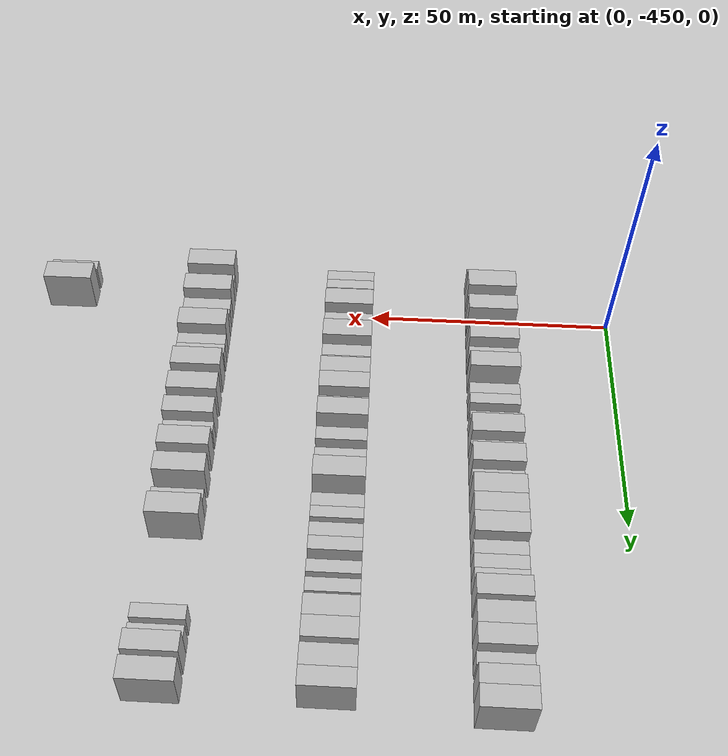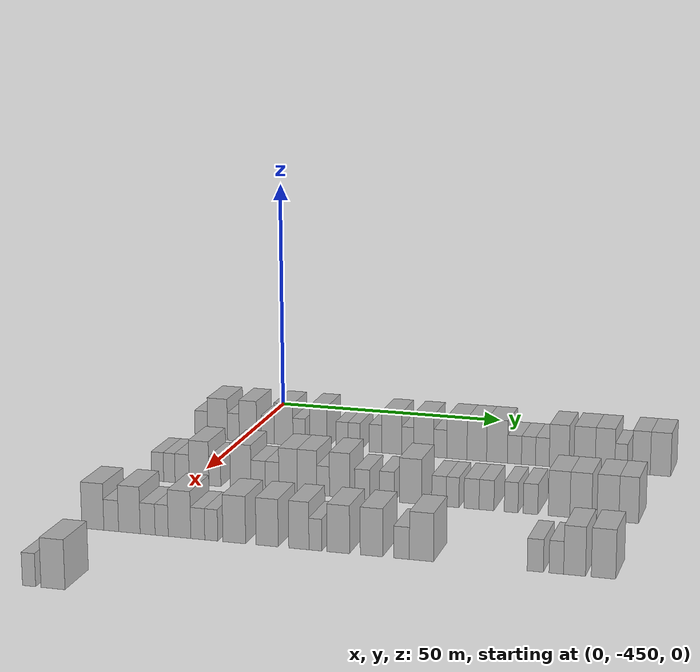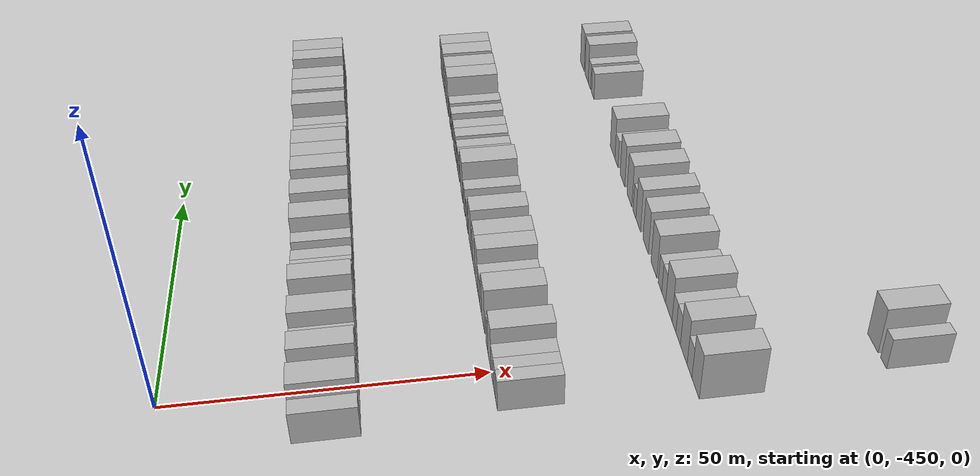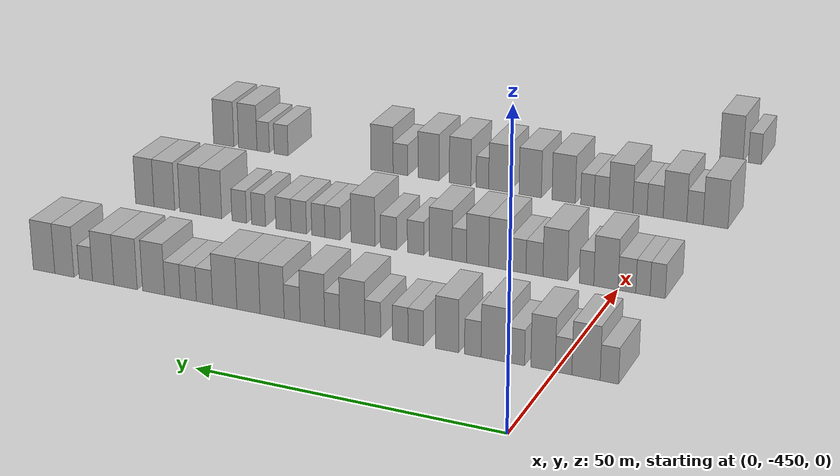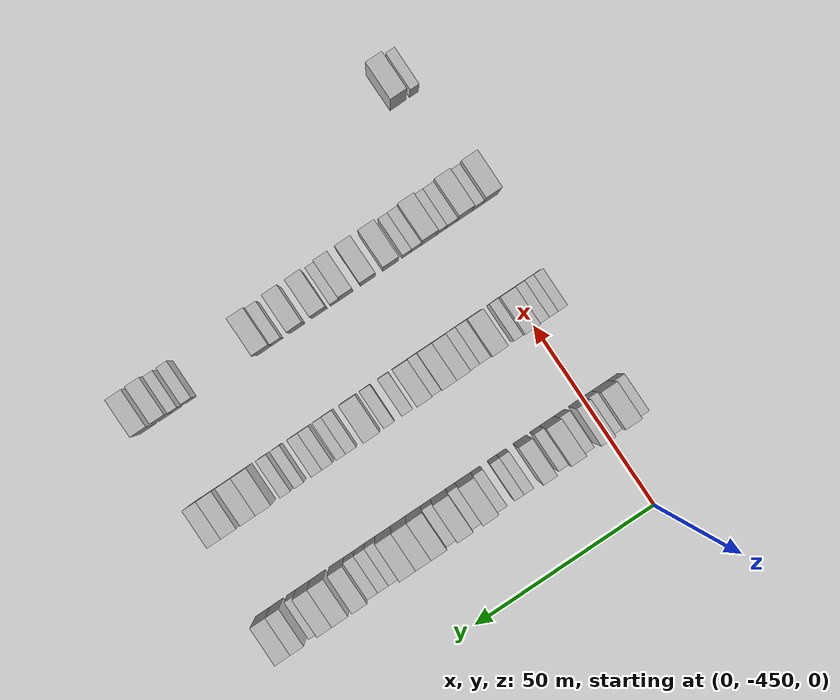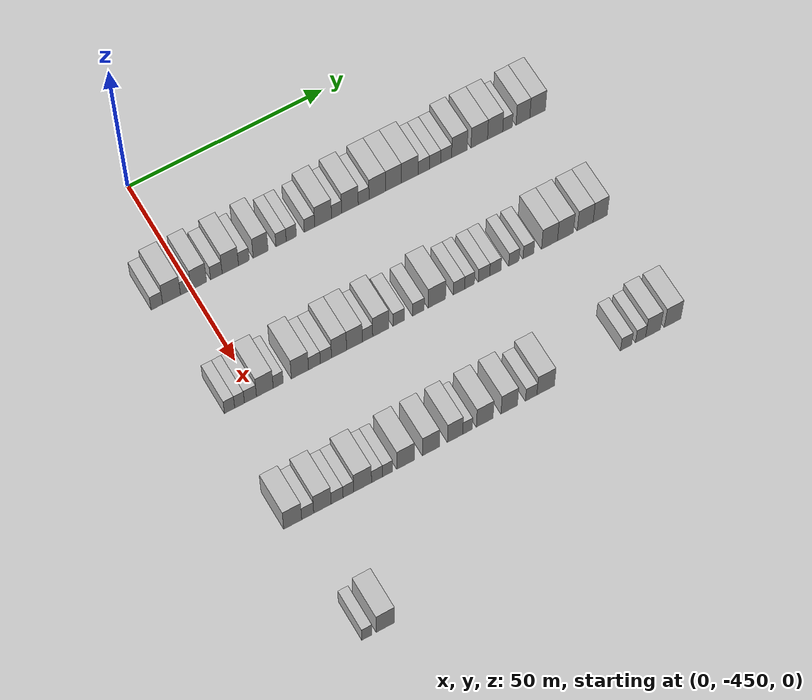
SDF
<sdf version="1.6">
 <world name="default">
  <model name="building_1">
   <static>1</static>
   <pose>25.0000 -458.5586 0 0.000000 0.000000 0.000000</pose>
   <link name="link">
    <pose>0 0 3.00 0 0 0</pose>
    <collision name="collision"><geometry><box><size>10.0000 2.8828 6.0000</size></box></geometry></collision>
    <visual name="visual">
     <cast_shadows>0</cast_shadows>
     <geometry><box><size>10.0000 2.8828 6.0000</size></box></geometry>
     <material>
      <script>
       <uri>model://HANNAS_wall/materials/scripts</uri>
       <uri>model://HANNAS_wall/materials/textures</uri>
       <name>vrc/HANNAS_wall</name>
      </script>
     </material>
    </visual>
   </link>
  </model>
  <model name="building_2">
   <static>1</static>
   <pose>25.0000 -454.8922 0 0.000000 0.000000 0.000000</pose>
   <link name="link">
    <pose>0 0 4.50 0 0 0</pose>
    <collision name="collision"><geometry><box><size>10.0000 4.4502 9.0000</size></box></geometry></collision>
    <visual name="visual">
     <cast_shadows>0</cast_shadows>
     <geometry><box><size>10.0000 4.4502 9.0000</size></box></geometry>
     <material>
      <script>
       <uri>model://HANNAS_wall/materials/scripts</uri>
       <uri>model://HANNAS_wall/materials/textures</uri>
       <name>vrc/HANNAS_wall</name>
      </script>
     </material>
    </visual>
   </link>
  </model>
  <model name="building_3">
   <static>1</static>
   <pose>25.0000 -451.3511 0 0.000000 0.000000 0.000000</pose>
   <link name="link">
    <pose>0 0 3.00 0 0 0</pose>
    <collision name="collision"><geometry><box><size>10.0000 2.6318 6.0000</size></box></geometry></collision>
    <visual name="visual">
     <cast_shadows>0</cast_shadows>
     <geometry><box><size>10.0000 2.6318 6.0000</size></box></geometry>
     <material>
      <script>
       <uri>model://HANNAS_wall/materials/scripts</uri>
       <uri>model://HANNAS_wall/materials/textures</uri>
       <name>vrc/HANNAS_wall</name>
      </script>
     </material>
    </visual>
   </link>
  </model>
  <model name="building_4">
   <static>1</static>
   <pose>25.0000 -448.0946 0 0.000000 0.000000 0.000000</pose>
   <link name="link">
    <pose>0 0 4.50 0 0 0</pose>
    <collision name="collision"><geometry><box><size>10.0000 3.8812 9.0000</size></box></geometry></collision>
    <visual name="visual">
     <cast_shadows>0</cast_shadows>
     <geometry><box><size>10.0000 3.8812 9.0000</size></box></geometry>
     <material>
      <script>
       <uri>model://HANNAS_wall/materials/scripts</uri>
       <uri>model://HANNAS_wall/materials/textures</uri>
       <name>vrc/HANNAS_wall</name>
      </script>
     </material>
    </visual>
   </link>
  </model>
  <model name="building_5">
   <static>1</static>
   <pose>25.0000 -443.6908 0 0.000000 0.000000 0.000000</pose>
   <link name="link">
    <pose>0 0 3.00 0 0 0</pose>
    <collision name="collision"><geometry><box><size>10.0000 2.9265 6.0000</size></box></geometry></collision>
    <visual name="visual">
     <cast_shadows>0</cast_shadows>
     <geometry><box><size>10.0000 2.9265 6.0000</size></box></geometry>
     <material>
      <script>
       <uri>model://HANNAS_wall/materials/scripts</uri>
       <uri>model://HANNAS_wall/materials/textures</uri>
       <name>vrc/HANNAS_wall</name>
      </script>
     </material>
    </visual>
   </link>
  </model>
  <model name="building_6">
   <static>1</static>
   <pose>25.0000 -440.1701 0 0.000000 0.000000 0.000000</pose>
   <link name="link">
    <pose>0 0 4.50 0 0 0</pose>
    <collision name="collision"><geometry><box><size>10.0000 4.1150 9.0000</size></box></geometry></collision>
    <visual name="visual">
     <cast_shadows>0</cast_shadows>
     <geometry><box><size>10.0000 4.1150 9.0000</size></box></geometry>
     <material>
      <script>
       <uri>model://HANNAS_wall/materials/scripts</uri>
       <uri>model://HANNAS_wall/materials/textures</uri>
       <name>vrc/HANNAS_wall</name>
      </script>
     </material>
    </visual>
   </link>
  </model>
  <model name="building_7">
   <static>1</static>
   <pose>25.0000 -436.7633 0 0.000000 0.000000 0.000000</pose>
   <link name="link">
    <pose>0 0 3.00 0 0 0</pose>
    <collision name="collision"><geometry><box><size>10.0000 2.6986 6.0000</size></box></geometry></collision>
    <visual name="visual">
     <cast_shadows>0</cast_shadows>
     <geometry><box><size>10.0000 2.6986 6.0000</size></box></geometry>
     <material>
      <script>
       <uri>model://HANNAS_wall/materials/scripts</uri>
       <uri>model://HANNAS_wall/materials/textures</uri>
       <name>vrc/HANNAS_wall</name>
      </script>
     </material>
    </visual>
   </link>
  </model>
  <model name="building_8">
   <static>1</static>
   <pose>25.0000 -432.5317 0 0.000000 0.000000 0.000000</pose>
   <link name="link">
    <pose>0 0 4.50 0 0 0</pose>
    <collision name="collision"><geometry><box><size>10.0000 3.7646 9.0000</size></box></geometry></collision>
    <visual name="visual">
     <cast_shadows>0</cast_shadows>
     <geometry><box><size>10.0000 3.7646 9.0000</size></box></geometry>
     <material>
      <script>
       <uri>model://HANNAS_wall/materials/scripts</uri>
       <uri>model://HANNAS_wall/materials/textures</uri>
       <name>vrc/HANNAS_wall</name>
      </script>
     </material>
    </visual>
   </link>
  </model>
  <model name="building_9">
   <static>1</static>
   <pose>25.0000 -427.3439 0 0.000000 0.000000 0.000000</pose>
   <link name="link">
    <pose>0 0 3.00 0 0 0</pose>
    <collision name="collision"><geometry><box><size>10.0000 2.6110 6.0000</size></box></geometry></collision>
    <visual name="visual">
     <cast_shadows>0</cast_shadows>
     <geometry><box><size>10.0000 2.6110 6.0000</size></box></geometry>
     <material>
      <script>
       <uri>model://HANNAS_wall/materials/scripts</uri>
       <uri>model://HANNAS_wall/materials/textures</uri>
       <name>vrc/HANNAS_wall</name>
      </script>
     </material>
    </visual>
   </link>
  </model>
  <model name="building_10">
   <static>1</static>
   <pose>25.0000 -424.7453 0 0.000000 0.000000 0.000000</pose>
   <link name="link">
    <pose>0 0 3.00 0 0 0</pose>
    <collision name="collision"><geometry><box><size>10.0000 2.5862 6.0000</size></box></geometry></collision>
    <visual name="visual">
     <cast_shadows>0</cast_shadows>
     <geometry><box><size>10.0000 2.5862 6.0000</size></box></geometry>
     <material>
      <script>
       <uri>model://HANNAS_wall/materials/scripts</uri>
       <uri>model://HANNAS_wall/materials/textures</uri>
       <name>vrc/HANNAS_wall</name>
      </script>
     </material>
    </visual>
   </link>
  </model>
  <model name="building_11">
   <static>1</static>
   <pose>25.0000 -420.1133 0 0.000000 0.000000 0.000000</pose>
   <link name="link">
    <pose>0 0 3.00 0 0 0</pose>
    <collision name="collision"><geometry><box><size>10.0000 2.6780 6.0000</size></box></geometry></collision>
    <visual name="visual">
     <cast_shadows>0</cast_shadows>
     <geometry><box><size>10.0000 2.6780 6.0000</size></box></geometry>
     <material>
      <script>
       <uri>model://HANNAS_wall/materials/scripts</uri>
       <uri>model://HANNAS_wall/materials/textures</uri>
       <name>vrc/HANNAS_wall</name>
      </script>
     </material>
    </visual>
   </link>
  </model>
  <model name="building_12">
   <static>1</static>
   <pose>25.0000 -416.6234 0 0.000000 0.000000 0.000000</pose>
   <link name="link">
    <pose>0 0 4.50 0 0 0</pose>
    <collision name="collision"><geometry><box><size>10.0000 4.3018 9.0000</size></box></geometry></collision>
    <visual name="visual">
     <cast_shadows>0</cast_shadows>
     <geometry><box><size>10.0000 4.3018 9.0000</size></box></geometry>
     <material>
      <script>
       <uri>model://HANNAS_wall/materials/scripts</uri>
       <uri>model://HANNAS_wall/materials/textures</uri>
       <name>vrc/HANNAS_wall</name>
      </script>
     </material>
    </visual>
   </link>
  </model>
  <model name="building_13">
   <static>1</static>
   <pose>25.0000 -413.1799 0 0.000000 0.000000 0.000000</pose>
   <link name="link">
    <pose>0 0 3.00 0 0 0</pose>
    <collision name="collision"><geometry><box><size>10.0000 2.5851 6.0000</size></box></geometry></collision>
    <visual name="visual">
     <cast_shadows>0</cast_shadows>
     <geometry><box><size>10.0000 2.5851 6.0000</size></box></geometry>
     <material>
      <script>
       <uri>model://HANNAS_wall/materials/scripts</uri>
       <uri>model://HANNAS_wall/materials/textures</uri>
       <name>vrc/HANNAS_wall</name>
      </script>
     </material>
    </visual>
   </link>
  </model>
  <model name="building_14">
   <static>1</static>
   <pose>25.0000 -409.7623 0 0.000000 0.000000 0.000000</pose>
   <link name="link">
    <pose>0 0 4.50 0 0 0</pose>
    <collision name="collision"><geometry><box><size>10.0000 4.2500 9.0000</size></box></geometry></collision>
    <visual name="visual">
     <cast_shadows>0</cast_shadows>
     <geometry><box><size>10.0000 4.2500 9.0000</size></box></geometry>
     <material>
      <script>
       <uri>model://HANNAS_wall/materials/scripts</uri>
       <uri>model://HANNAS_wall/materials/textures</uri>
       <name>vrc/HANNAS_wall</name>
      </script>
     </material>
    </visual>
   </link>
  </model>
  <model name="building_15">
   <static>1</static>
   <pose>25.0000 -406.2445 0 0.000000 0.000000 0.000000</pose>
   <link name="link">
    <pose>0 0 3.00 0 0 0</pose>
    <collision name="collision"><geometry><box><size>10.0000 2.7857 6.0000</size></box></geometry></collision>
    <visual name="visual">
     <cast_shadows>0</cast_shadows>
     <geometry><box><size>10.0000 2.7857 6.0000</size></box></geometry>
     <material>
      <script>
       <uri>model://HANNAS_wall/materials/scripts</uri>
       <uri>model://HANNAS_wall/materials/textures</uri>
       <name>vrc/HANNAS_wall</name>
      </script>
     </material>
    </visual>
   </link>
  </model>
  <model name="building_16">
   <static>1</static>
   <pose>25.0000 -402.7306 0 0.000000 0.000000 0.000000</pose>
   <link name="link">
    <pose>0 0 4.50 0 0 0</pose>
    <collision name="collision"><geometry><box><size>10.0000 4.2420 9.0000</size></box></geometry></collision>
    <visual name="visual">
     <cast_shadows>0</cast_shadows>
     <geometry><box><size>10.0000 4.2420 9.0000</size></box></geometry>
     <material>
      <script>
       <uri>model://HANNAS_wall/materials/scripts</uri>
       <uri>model://HANNAS_wall/materials/textures</uri>
       <name>vrc/HANNAS_wall</name>
      </script>
     </material>
    </visual>
   </link>
  </model>
  <model name="building_17">
   <static>1</static>
   <pose>25.0000 -398.5510 0 0.000000 0.000000 0.000000</pose>
   <link name="link">
    <pose>0 0 4.50 0 0 0</pose>
    <collision name="collision"><geometry><box><size>10.0000 4.1172 9.0000</size></box></geometry></collision>
    <visual name="visual">
     <cast_shadows>0</cast_shadows>
     <geometry><box><size>10.0000 4.1172 9.0000</size></box></geometry>
     <material>
      <script>
       <uri>model://HANNAS_wall/materials/scripts</uri>
       <uri>model://HANNAS_wall/materials/textures</uri>
       <name>vrc/HANNAS_wall</name>
      </script>
     </material>
    </visual>
   </link>
  </model>
  <model name="building_18">
   <static>1</static>
   <pose>25.0000 -394.3145 0 0.000000 0.000000 0.000000</pose>
   <link name="link">
    <pose>0 0 4.50 0 0 0</pose>
    <collision name="collision"><geometry><box><size>10.0000 4.3558 9.0000</size></box></geometry></collision>
    <visual name="visual">
     <cast_shadows>0</cast_shadows>
     <geometry><box><size>10.0000 4.3558 9.0000</size></box></geometry>
     <material>
      <script>
       <uri>model://HANNAS_wall/materials/scripts</uri>
       <uri>model://HANNAS_wall/materials/textures</uri>
       <name>vrc/HANNAS_wall</name>
      </script>
     </material>
    </visual>
   </link>
  </model>
  <model name="building_19">
   <static>1</static>
   <pose>25.0000 -390.6799 0 0.000000 0.000000 0.000000</pose>
   <link name="link">
    <pose>0 0 3.00 0 0 0</pose>
    <collision name="collision"><geometry><box><size>10.0000 2.9135 6.0000</size></box></geometry></collision>
    <visual name="visual">
     <cast_shadows>0</cast_shadows>
     <geometry><box><size>10.0000 2.9135 6.0000</size></box></geometry>
     <material>
      <script>
       <uri>model://HANNAS_wall/materials/scripts</uri>
       <uri>model://HANNAS_wall/materials/textures</uri>
       <name>vrc/HANNAS_wall</name>
      </script>
     </material>
    </visual>
   </link>
  </model>
  <model name="building_20">
   <static>1</static>
   <pose>25.0000 -387.7635 0 0.000000 0.000000 0.000000</pose>
   <link name="link">
    <pose>0 0 3.00 0 0 0</pose>
    <collision name="collision"><geometry><box><size>10.0000 2.9193 6.0000</size></box></geometry></collision>
    <visual name="visual">
     <cast_shadows>0</cast_shadows>
     <geometry><box><size>10.0000 2.9193 6.0000</size></box></geometry>
     <material>
      <script>
       <uri>model://HANNAS_wall/materials/scripts</uri>
       <uri>model://HANNAS_wall/materials/textures</uri>
       <name>vrc/HANNAS_wall</name>
      </script>
     </material>
    </visual>
   </link>
  </model>
  <model name="building_21">
   <static>1</static>
   <pose>25.0000 -384.8838 0 0.000000 0.000000 0.000000</pose>
   <link name="link">
    <pose>0 0 3.00 0 0 0</pose>
    <collision name="collision"><geometry><box><size>10.0000 2.8401 6.0000</size></box></geometry></collision>
    <visual name="visual">
     <cast_shadows>0</cast_shadows>
     <geometry><box><size>10.0000 2.8401 6.0000</size></box></geometry>
     <material>
      <script>
       <uri>model://HANNAS_wall/materials/scripts</uri>
       <uri>model://HANNAS_wall/materials/textures</uri>
       <name>vrc/HANNAS_wall</name>
      </script>
     </material>
    </visual>
   </link>
  </model>
  <model name="building_22">
   <static>1</static>
   <pose>25.0000 -381.4301 0 0.000000 0.000000 0.000000</pose>
   <link name="link">
    <pose>0 0 4.50 0 0 0</pose>
    <collision name="collision"><geometry><box><size>10.0000 4.0673 9.0000</size></box></geometry></collision>
    <visual name="visual">
     <cast_shadows>0</cast_shadows>
     <geometry><box><size>10.0000 4.0673 9.0000</size></box></geometry>
     <material>
      <script>
       <uri>model://HANNAS_wall/materials/scripts</uri>
       <uri>model://HANNAS_wall/materials/textures</uri>
       <name>vrc/HANNAS_wall</name>
      </script>
     </material>
    </visual>
   </link>
  </model>
  <model name="building_23">
   <static>1</static>
   <pose>25.0000 -376.2225 0 0.000000 0.000000 0.000000</pose>
   <link name="link">
    <pose>0 0 4.50 0 0 0</pose>
    <collision name="collision"><geometry><box><size>10.0000 4.3479 9.0000</size></box></geometry></collision>
    <visual name="visual">
     <cast_shadows>0</cast_shadows>
     <geometry><box><size>10.0000 4.3479 9.0000</size></box></geometry>
     <material>
      <script>
       <uri>model://HANNAS_wall/materials/scripts</uri>
       <uri>model://HANNAS_wall/materials/textures</uri>
       <name>vrc/HANNAS_wall</name>
      </script>
     </material>
    </visual>
   </link>
  </model>
  <model name="building_24">
   <static>1</static>
   <pose>25.0000 -372.0538 0 0.000000 0.000000 0.000000</pose>
   <link name="link">
    <pose>0 0 4.50 0 0 0</pose>
    <collision name="collision"><geometry><box><size>10.0000 3.9895 9.0000</size></box></geometry></collision>
    <visual name="visual">
     <cast_shadows>0</cast_shadows>
     <geometry><box><size>10.0000 3.9895 9.0000</size></box></geometry>
     <material>
      <script>
       <uri>model://HANNAS_wall/materials/scripts</uri>
       <uri>model://HANNAS_wall/materials/textures</uri>
       <name>vrc/HANNAS_wall</name>
      </script>
     </material>
    </visual>
   </link>
  </model>
  <model name="building_25">
   <static>1</static>
   <pose>25.0000 -368.8045 0 0.000000 0.000000 0.000000</pose>
   <link name="link">
    <pose>0 0 3.00 0 0 0</pose>
    <collision name="collision"><geometry><box><size>10.0000 2.5091 6.0000</size></box></geometry></collision>
    <visual name="visual">
     <cast_shadows>0</cast_shadows>
     <geometry><box><size>10.0000 2.5091 6.0000</size></box></geometry>
     <material>
      <script>
       <uri>model://HANNAS_wall/materials/scripts</uri>
       <uri>model://HANNAS_wall/materials/textures</uri>
       <name>vrc/HANNAS_wall</name>
      </script>
     </material>
    </visual>
   </link>
  </model>
  <model name="building_26">
   <static>1</static>
   <pose>25.0000 -364.7285 0 0.000000 0.000000 0.000000</pose>
   <link name="link">
    <pose>0 0 4.50 0 0 0</pose>
    <collision name="collision"><geometry><box><size>10.0000 3.6430 9.0000</size></box></geometry></collision>
    <visual name="visual">
     <cast_shadows>0</cast_shadows>
     <geometry><box><size>10.0000 3.6430 9.0000</size></box></geometry>
     <material>
      <script>
       <uri>model://HANNAS_wall/materials/scripts</uri>
       <uri>model://HANNAS_wall/materials/textures</uri>
       <name>vrc/HANNAS_wall</name>
      </script>
     </material>
    </visual>
   </link>
  </model>
  <model name="building_27">
   <static>1</static>
   <pose>25.0000 -360.8503 0 0.000000 0.000000 0.000000</pose>
   <link name="link">
    <pose>0 0 4.50 0 0 0</pose>
    <collision name="collision"><geometry><box><size>10.0000 4.1133 9.0000</size></box></geometry></collision>
    <visual name="visual">
     <cast_shadows>0</cast_shadows>
     <geometry><box><size>10.0000 4.1133 9.0000</size></box></geometry>
     <material>
      <script>
       <uri>model://HANNAS_wall/materials/scripts</uri>
       <uri>model://HANNAS_wall/materials/textures</uri>
       <name>vrc/HANNAS_wall</name>
      </script>
     </material>
    </visual>
   </link>
  </model>
  <model name="building_223">
   <static>1</static>
   <pose>55.0000 -456.7282 0 0.000000 0.000000 0.000000</pose>
   <link name="link">
    <pose>0 0 3.00 0 0 0</pose>
    <collision name="collision"><geometry><box><size>10.0000 2.5437 6.0000</size></box></geometry></collision>
    <visual name="visual">
     <cast_shadows>0</cast_shadows>
     <geometry><box><size>10.0000 2.5437 6.0000</size></box></geometry>
     <material>
      <script>
       <uri>model://HANNAS_wall/materials/scripts</uri>
       <uri>model://HANNAS_wall/materials/textures</uri>
       <name>vrc/HANNAS_wall</name>
      </script>
     </material>
    </visual>
   </link>
  </model>
  <model name="building_224">
   <static>1</static>
   <pose>55.0000 -454.2559 0 0.000000 0.000000 0.000000</pose>
   <link name="link">
    <pose>0 0 3.00 0 0 0</pose>
    <collision name="collision"><geometry><box><size>10.0000 2.4008 6.0000</size></box></geometry></collision>
    <visual name="visual">
     <cast_shadows>0</cast_shadows>
     <geometry><box><size>10.0000 2.4008 6.0000</size></box></geometry>
     <material>
      <script>
       <uri>model://HANNAS_wall/materials/scripts</uri>
       <uri>model://HANNAS_wall/materials/textures</uri>
       <name>vrc/HANNAS_wall</name>
      </script>
     </material>
    </visual>
   </link>
  </model>
  <model name="building_225">
   <static>1</static>
   <pose>55.0000 -451.5645 0 0.000000 0.000000 0.000000</pose>
   <link name="link">
    <pose>0 0 3.00 0 0 0</pose>
    <collision name="collision"><geometry><box><size>10.0000 2.9821 6.0000</size></box></geometry></collision>
    <visual name="visual">
     <cast_shadows>0</cast_shadows>
     <geometry><box><size>10.0000 2.9821 6.0000</size></box></geometry>
     <material>
      <script>
       <uri>model://HANNAS_wall/materials/scripts</uri>
       <uri>model://HANNAS_wall/materials/textures</uri>
       <name>vrc/HANNAS_wall</name>
      </script>
     </material>
    </visual>
   </link>
  </model>
  <model name="building_226">
   <static>1</static>
   <pose>55.0000 -447.9996 0 0.000000 0.000000 0.000000</pose>
   <link name="link">
    <pose>0 0 4.50 0 0 0</pose>
    <collision name="collision"><geometry><box><size>10.0000 4.1476 9.0000</size></box></geometry></collision>
    <visual name="visual">
     <cast_shadows>0</cast_shadows>
     <geometry><box><size>10.0000 4.1476 9.0000</size></box></geometry>
     <material>
      <script>
       <uri>model://HANNAS_wall/materials/scripts</uri>
       <uri>model://HANNAS_wall/materials/textures</uri>
       <name>vrc/HANNAS_wall</name>
      </script>
     </material>
    </visual>
   </link>
  </model>
  <model name="building_227">
   <static>1</static>
   <pose>55.0000 -444.6819 0 0.000000 0.000000 0.000000</pose>
   <link name="link">
    <pose>0 0 3.00 0 0 0</pose>
    <collision name="collision"><geometry><box><size>10.0000 2.4879 6.0000</size></box></geometry></collision>
    <visual name="visual">
     <cast_shadows>0</cast_shadows>
     <geometry><box><size>10.0000 2.4879 6.0000</size></box></geometry>
     <material>
      <script>
       <uri>model://HANNAS_wall/materials/scripts</uri>
       <uri>model://HANNAS_wall/materials/textures</uri>
       <name>vrc/HANNAS_wall</name>
      </script>
     </material>
    </visual>
   </link>
  </model>
  <model name="building_228">
   <static>1</static>
   <pose>55.0000 -439.2936 0 0.000000 0.000000 0.000000</pose>
   <link name="link">
    <pose>0 0 4.50 0 0 0</pose>
    <collision name="collision"><geometry><box><size>10.0000 4.2886 9.0000</size></box></geometry></collision>
    <visual name="visual">
     <cast_shadows>0</cast_shadows>
     <geometry><box><size>10.0000 4.2886 9.0000</size></box></geometry>
     <material>
      <script>
       <uri>model://HANNAS_wall/materials/scripts</uri>
       <uri>model://HANNAS_wall/materials/textures</uri>
       <name>vrc/HANNAS_wall</name>
      </script>
     </material>
    </visual>
   </link>
  </model>
  <model name="building_229">
   <static>1</static>
   <pose>55.0000 -435.6704 0 0.000000 0.000000 0.000000</pose>
   <link name="link">
    <pose>0 0 3.00 0 0 0</pose>
    <collision name="collision"><geometry><box><size>10.0000 2.9577 6.0000</size></box></geometry></collision>
    <visual name="visual">
     <cast_shadows>0</cast_shadows>
     <geometry><box><size>10.0000 2.9577 6.0000</size></box></geometry>
     <material>
      <script>
       <uri>model://HANNAS_wall/materials/scripts</uri>
       <uri>model://HANNAS_wall/materials/textures</uri>
       <name>vrc/HANNAS_wall</name>
      </script>
     </material>
    </visual>
   </link>
  </model>
  <model name="building_230">
   <static>1</static>
   <pose>55.0000 -432.7986 0 0.000000 0.000000 0.000000</pose>
   <link name="link">
    <pose>0 0 3.00 0 0 0</pose>
    <collision name="collision"><geometry><box><size>10.0000 2.7860 6.0000</size></box></geometry></collision>
    <visual name="visual">
     <cast_shadows>0</cast_shadows>
     <geometry><box><size>10.0000 2.7860 6.0000</size></box></geometry>
     <material>
      <script>
       <uri>model://HANNAS_wall/materials/scripts</uri>
       <uri>model://HANNAS_wall/materials/textures</uri>
       <name>vrc/HANNAS_wall</name>
      </script>
     </material>
    </visual>
   </link>
  </model>
  <model name="building_231">
   <static>1</static>
   <pose>55.0000 -429.5207 0 0.000000 0.000000 0.000000</pose>
   <link name="link">
    <pose>0 0 4.50 0 0 0</pose>
    <collision name="collision"><geometry><box><size>10.0000 3.7697 9.0000</size></box></geometry></collision>
    <visual name="visual">
     <cast_shadows>0</cast_shadows>
     <geometry><box><size>10.0000 3.7697 9.0000</size></box></geometry>
     <material>
      <script>
       <uri>model://HANNAS_wall/materials/scripts</uri>
       <uri>model://HANNAS_wall/materials/textures</uri>
       <name>vrc/HANNAS_wall</name>
      </script>
     </material>
    </visual>
   </link>
  </model>
  <model name="building_232">
   <static>1</static>
   <pose>55.0000 -425.6539 0 0.000000 0.000000 0.000000</pose>
   <link name="link">
    <pose>0 0 4.50 0 0 0</pose>
    <collision name="collision"><geometry><box><size>10.0000 3.9640 9.0000</size></box></geometry></collision>
    <visual name="visual">
     <cast_shadows>0</cast_shadows>
     <geometry><box><size>10.0000 3.9640 9.0000</size></box></geometry>
     <material>
      <script>
       <uri>model://HANNAS_wall/materials/scripts</uri>
       <uri>model://HANNAS_wall/materials/textures</uri>
       <name>vrc/HANNAS_wall</name>
      </script>
     </material>
    </visual>
   </link>
  </model>
  <model name="building_233">
   <static>1</static>
   <pose>55.0000 -422.3727 0 0.000000 0.000000 0.000000</pose>
   <link name="link">
    <pose>0 0 3.00 0 0 0</pose>
    <collision name="collision"><geometry><box><size>10.0000 2.5984 6.0000</size></box></geometry></collision>
    <visual name="visual">
     <cast_shadows>0</cast_shadows>
     <geometry><box><size>10.0000 2.5984 6.0000</size></box></geometry>
     <material>
      <script>
       <uri>model://HANNAS_wall/materials/scripts</uri>
       <uri>model://HANNAS_wall/materials/textures</uri>
       <name>vrc/HANNAS_wall</name>
      </script>
     </material>
    </visual>
   </link>
  </model>
  <model name="building_234">
   <static>1</static>
   <pose>55.0000 -419.0312 0 0.000000 0.000000 0.000000</pose>
   <link name="link">
    <pose>0 0 4.50 0 0 0</pose>
    <collision name="collision"><geometry><box><size>10.0000 4.0845 9.0000</size></box></geometry></collision>
    <visual name="visual">
     <cast_shadows>0</cast_shadows>
     <geometry><box><size>10.0000 4.0845 9.0000</size></box></geometry>
     <material>
      <script>
       <uri>model://HANNAS_wall/materials/scripts</uri>
       <uri>model://HANNAS_wall/materials/textures</uri>
       <name>vrc/HANNAS_wall</name>
      </script>
     </material>
    </visual>
   </link>
  </model>
  <model name="building_235">
   <static>1</static>
   <pose>55.0000 -414.4948 0 0.000000 0.000000 0.000000</pose>
   <link name="link">
    <pose>0 0 3.00 0 0 0</pose>
    <collision name="collision"><geometry><box><size>10.0000 2.9883 6.0000</size></box></geometry></collision>
    <visual name="visual">
     <cast_shadows>0</cast_shadows>
     <geometry><box><size>10.0000 2.9883 6.0000</size></box></geometry>
     <material>
      <script>
       <uri>model://HANNAS_wall/materials/scripts</uri>
       <uri>model://HANNAS_wall/materials/textures</uri>
       <name>vrc/HANNAS_wall</name>
      </script>
     </material>
    </visual>
   </link>
  </model>
  <model name="building_236">
   <static>1</static>
   <pose>55.0000 -409.5299 0 0.000000 0.000000 0.000000</pose>
   <link name="link">
    <pose>0 0 3.00 0 0 0</pose>
    <collision name="collision"><geometry><box><size>10.0000 2.9416 6.0000</size></box></geometry></collision>
    <visual name="visual">
     <cast_shadows>0</cast_shadows>
     <geometry><box><size>10.0000 2.9416 6.0000</size></box></geometry>
     <material>
      <script>
       <uri>model://HANNAS_wall/materials/scripts</uri>
       <uri>model://HANNAS_wall/materials/textures</uri>
       <name>vrc/HANNAS_wall</name>
      </script>
     </material>
    </visual>
   </link>
  </model>
  <model name="building_237">
   <static>1</static>
   <pose>55.0000 -404.8370 0 0.000000 0.000000 0.000000</pose>
   <link name="link">
    <pose>0 0 4.50 0 0 0</pose>
    <collision name="collision"><geometry><box><size>10.0000 4.4442 9.0000</size></box></geometry></collision>
    <visual name="visual">
     <cast_shadows>0</cast_shadows>
     <geometry><box><size>10.0000 4.4442 9.0000</size></box></geometry>
     <material>
      <script>
       <uri>model://HANNAS_wall/materials/scripts</uri>
       <uri>model://HANNAS_wall/materials/textures</uri>
       <name>vrc/HANNAS_wall</name>
      </script>
     </material>
    </visual>
   </link>
  </model>
  <model name="building_238">
   <static>1</static>
   <pose>55.0000 -399.1702 0 0.000000 0.000000 0.000000</pose>
   <link name="link">
    <pose>0 0 3.00 0 0 0</pose>
    <collision name="collision"><geometry><box><size>10.0000 2.8892 6.0000</size></box></geometry></collision>
    <visual name="visual">
     <cast_shadows>0</cast_shadows>
     <geometry><box><size>10.0000 2.8892 6.0000</size></box></geometry>
     <material>
      <script>
       <uri>model://HANNAS_wall/materials/scripts</uri>
       <uri>model://HANNAS_wall/materials/textures</uri>
       <name>vrc/HANNAS_wall</name>
      </script>
     </material>
    </visual>
   </link>
  </model>
  <model name="building_239">
   <static>1</static>
   <pose>55.0000 -396.4816 0 0.000000 0.000000 0.000000</pose>
   <link name="link">
    <pose>0 0 3.00 0 0 0</pose>
    <collision name="collision"><geometry><box><size>10.0000 2.4881 6.0000</size></box></geometry></collision>
    <visual name="visual">
     <cast_shadows>0</cast_shadows>
     <geometry><box><size>10.0000 2.4881 6.0000</size></box></geometry>
     <material>
      <script>
       <uri>model://HANNAS_wall/materials/scripts</uri>
       <uri>model://HANNAS_wall/materials/textures</uri>
       <name>vrc/HANNAS_wall</name>
      </script>
     </material>
    </visual>
   </link>
  </model>
  <model name="building_240">
   <static>1</static>
   <pose>55.0000 -392.7725 0 0.000000 0.000000 0.000000</pose>
   <link name="link">
    <pose>0 0 3.00 0 0 0</pose>
    <collision name="collision"><geometry><box><size>10.0000 2.9301 6.0000</size></box></geometry></collision>
    <visual name="visual">
     <cast_shadows>0</cast_shadows>
     <geometry><box><size>10.0000 2.9301 6.0000</size></box></geometry>
     <material>
      <script>
       <uri>model://HANNAS_wall/materials/scripts</uri>
       <uri>model://HANNAS_wall/materials/textures</uri>
       <name>vrc/HANNAS_wall</name>
      </script>
     </material>
    </visual>
   </link>
  </model>
  <model name="building_241">
   <static>1</static>
   <pose>55.0000 -389.8601 0 0.000000 0.000000 0.000000</pose>
   <link name="link">
    <pose>0 0 3.00 0 0 0</pose>
    <collision name="collision"><geometry><box><size>10.0000 2.8948 6.0000</size></box></geometry></collision>
    <visual name="visual">
     <cast_shadows>0</cast_shadows>
     <geometry><box><size>10.0000 2.8948 6.0000</size></box></geometry>
     <material>
      <script>
       <uri>model://HANNAS_wall/materials/scripts</uri>
       <uri>model://HANNAS_wall/materials/textures</uri>
       <name>vrc/HANNAS_wall</name>
      </script>
     </material>
    </visual>
   </link>
  </model>
  <model name="building_242">
   <static>1</static>
   <pose>55.0000 -385.0826 0 0.000000 0.000000 0.000000</pose>
   <link name="link">
    <pose>0 0 3.00 0 0 0</pose>
    <collision name="collision"><geometry><box><size>10.0000 2.6601 6.0000</size></box></geometry></collision>
    <visual name="visual">
     <cast_shadows>0</cast_shadows>
     <geometry><box><size>10.0000 2.6601 6.0000</size></box></geometry>
     <material>
      <script>
       <uri>model://HANNAS_wall/materials/scripts</uri>
       <uri>model://HANNAS_wall/materials/textures</uri>
       <name>vrc/HANNAS_wall</name>
      </script>
     </material>
    </visual>
   </link>
  </model>
  <model name="building_243">
   <static>1</static>
   <pose>55.0000 -381.3416 0 0.000000 0.000000 0.000000</pose>
   <link name="link">
    <pose>0 0 3.00 0 0 0</pose>
    <collision name="collision"><geometry><box><size>10.0000 2.8220 6.0000</size></box></geometry></collision>
    <visual name="visual">
     <cast_shadows>0</cast_shadows>
     <geometry><box><size>10.0000 2.8220 6.0000</size></box></geometry>
     <material>
      <script>
       <uri>model://HANNAS_wall/materials/scripts</uri>
       <uri>model://HANNAS_wall/materials/textures</uri>
       <name>vrc/HANNAS_wall</name>
      </script>
     </material>
    </visual>
   </link>
  </model>
  <model name="building_244">
   <static>1</static>
   <pose>55.0000 -375.8629 0 0.000000 0.000000 0.000000</pose>
   <link name="link">
    <pose>0 0 4.50 0 0 0</pose>
    <collision name="collision"><geometry><box><size>10.0000 4.1354 9.0000</size></box></geometry></collision>
    <visual name="visual">
     <cast_shadows>0</cast_shadows>
     <geometry><box><size>10.0000 4.1354 9.0000</size></box></geometry>
     <material>
      <script>
       <uri>model://HANNAS_wall/materials/scripts</uri>
       <uri>model://HANNAS_wall/materials/textures</uri>
       <name>vrc/HANNAS_wall</name>
      </script>
     </material>
    </visual>
   </link>
  </model>
  <model name="building_245">
   <static>1</static>
   <pose>55.0000 -371.7248 0 0.000000 0.000000 0.000000</pose>
   <link name="link">
    <pose>0 0 4.50 0 0 0</pose>
    <collision name="collision"><geometry><box><size>10.0000 4.1408 9.0000</size></box></geometry></collision>
    <visual name="visual">
     <cast_shadows>0</cast_shadows>
     <geometry><box><size>10.0000 4.1408 9.0000</size></box></geometry>
     <material>
      <script>
       <uri>model://HANNAS_wall/materials/scripts</uri>
       <uri>model://HANNAS_wall/materials/textures</uri>
       <name>vrc/HANNAS_wall</name>
      </script>
     </material>
    </visual>
   </link>
  </model>
  <model name="building_246">
   <static>1</static>
   <pose>55.0000 -366.5838 0 0.000000 0.000000 0.000000</pose>
   <link name="link">
    <pose>0 0 4.50 0 0 0</pose>
    <collision name="collision"><geometry><box><size>10.0000 4.1412 9.0000</size></box></geometry></collision>
    <visual name="visual">
     <cast_shadows>0</cast_shadows>
     <geometry><box><size>10.0000 4.1412 9.0000</size></box></geometry>
     <material>
      <script>
       <uri>model://HANNAS_wall/materials/scripts</uri>
       <uri>model://HANNAS_wall/materials/textures</uri>
       <name>vrc/HANNAS_wall</name>
      </script>
     </material>
    </visual>
   </link>
  </model>
  <model name="building_247">
   <static>1</static>
   <pose>55.0000 -362.6685 0 0.000000 0.000000 0.000000</pose>
   <link name="link">
    <pose>0 0 4.50 0 0 0</pose>
    <collision name="collision"><geometry><box><size>10.0000 3.6895 9.0000</size></box></geometry></collision>
    <visual name="visual">
     <cast_shadows>0</cast_shadows>
     <geometry><box><size>10.0000 3.6895 9.0000</size></box></geometry>
     <material>
      <script>
       <uri>model://HANNAS_wall/materials/scripts</uri>
       <uri>model://HANNAS_wall/materials/textures</uri>
       <name>vrc/HANNAS_wall</name>
      </script>
     </material>
    </visual>
   </link>
  </model>
  <model name="building_445">
   <static>1</static>
   <pose>85.0000 -457.8046 0 0.000000 0.000000 0.000000</pose>
   <link name="link">
    <pose>0 0 4.50 0 0 0</pose>
    <collision name="collision"><geometry><box><size>10.0000 4.3908 9.0000</size></box></geometry></collision>
    <visual name="visual">
     <cast_shadows>0</cast_shadows>
     <geometry><box><size>10.0000 4.3908 9.0000</size></box></geometry>
     <material>
      <script>
       <uri>model://HANNAS_wall/materials/scripts</uri>
       <uri>model://HANNAS_wall/materials/textures</uri>
       <name>vrc/HANNAS_wall</name>
      </script>
     </material>
    </visual>
   </link>
  </model>
  <model name="building_446">
   <static>1</static>
   <pose>85.0000 -454.1443 0 0.000000 0.000000 0.000000</pose>
   <link name="link">
    <pose>0 0 3.00 0 0 0</pose>
    <collision name="collision"><geometry><box><size>10.0000 2.9298 6.0000</size></box></geometry></collision>
    <visual name="visual">
     <cast_shadows>0</cast_shadows>
     <geometry><box><size>10.0000 2.9298 6.0000</size></box></geometry>
     <material>
      <script>
       <uri>model://HANNAS_wall/materials/scripts</uri>
       <uri>model://HANNAS_wall/materials/textures</uri>
       <name>vrc/HANNAS_wall</name>
      </script>
     </material>
    </visual>
   </link>
  </model>
  <model name="building_447">
   <static>1</static>
   <pose>85.0000 -450.5498 0 0.000000 0.000000 0.000000</pose>
   <link name="link">
    <pose>0 0 4.50 0 0 0</pose>
    <collision name="collision"><geometry><box><size>10.0000 4.2593 9.0000</size></box></geometry></collision>
    <visual name="visual">
     <cast_shadows>0</cast_shadows>
     <geometry><box><size>10.0000 4.2593 9.0000</size></box></geometry>
     <material>
      <script>
       <uri>model://HANNAS_wall/materials/scripts</uri>
       <uri>model://HANNAS_wall/materials/textures</uri>
       <name>vrc/HANNAS_wall</name>
      </script>
     </material>
    </visual>
   </link>
  </model>
  <model name="building_448">
   <static>1</static>
   <pose>85.0000 -446.9531 0 0.000000 0.000000 0.000000</pose>
   <link name="link">
    <pose>0 0 3.00 0 0 0</pose>
    <collision name="collision"><geometry><box><size>10.0000 2.9342 6.0000</size></box></geometry></collision>
    <visual name="visual">
     <cast_shadows>0</cast_shadows>
     <geometry><box><size>10.0000 2.9342 6.0000</size></box></geometry>
     <material>
      <script>
       <uri>model://HANNAS_wall/materials/scripts</uri>
       <uri>model://HANNAS_wall/materials/textures</uri>
       <name>vrc/HANNAS_wall</name>
      </script>
     </material>
    </visual>
   </link>
  </model>
  <model name="building_449">
   <static>1</static>
   <pose>85.0000 -444.1962 0 0.000000 0.000000 0.000000</pose>
   <link name="link">
    <pose>0 0 3.00 0 0 0</pose>
    <collision name="collision"><geometry><box><size>10.0000 2.5795 6.0000</size></box></geometry></collision>
    <visual name="visual">
     <cast_shadows>0</cast_shadows>
     <geometry><box><size>10.0000 2.5795 6.0000</size></box></geometry>
     <material>
      <script>
       <uri>model://HANNAS_wall/materials/scripts</uri>
       <uri>model://HANNAS_wall/materials/textures</uri>
       <name>vrc/HANNAS_wall</name>
      </script>
     </material>
    </visual>
   </link>
  </model>
  <model name="building_450">
   <static>1</static>
   <pose>85.0000 -440.7095 0 0.000000 0.000000 0.000000</pose>
   <link name="link">
    <pose>0 0 4.50 0 0 0</pose>
    <collision name="collision"><geometry><box><size>10.0000 4.3939 9.0000</size></box></geometry></collision>
    <visual name="visual">
     <cast_shadows>0</cast_shadows>
     <geometry><box><size>10.0000 4.3939 9.0000</size></box></geometry>
     <material>
      <script>
       <uri>model://HANNAS_wall/materials/scripts</uri>
       <uri>model://HANNAS_wall/materials/textures</uri>
       <name>vrc/HANNAS_wall</name>
      </script>
     </material>
    </visual>
   </link>
  </model>
  <model name="building_451">
   <static>1</static>
   <pose>85.0000 -437.1553 0 0.000000 0.000000 0.000000</pose>
   <link name="link">
    <pose>0 0 3.00 0 0 0</pose>
    <collision name="collision"><geometry><box><size>10.0000 2.7146 6.0000</size></box></geometry></collision>
    <visual name="visual">
     <cast_shadows>0</cast_shadows>
     <geometry><box><size>10.0000 2.7146 6.0000</size></box></geometry>
     <material>
      <script>
       <uri>model://HANNAS_wall/materials/scripts</uri>
       <uri>model://HANNAS_wall/materials/textures</uri>
       <name>vrc/HANNAS_wall</name>
      </script>
     </material>
    </visual>
   </link>
  </model>
  <model name="building_452">
   <static>1</static>
   <pose>85.0000 -434.5457 0 0.000000 0.000000 0.000000</pose>
   <link name="link">
    <pose>0 0 3.00 0 0 0</pose>
    <collision name="collision"><geometry><box><size>10.0000 2.5045 6.0000</size></box></geometry></collision>
    <visual name="visual">
     <cast_shadows>0</cast_shadows>
     <geometry><box><size>10.0000 2.5045 6.0000</size></box></geometry>
     <material>
      <script>
       <uri>model://HANNAS_wall/materials/scripts</uri>
       <uri>model://HANNAS_wall/materials/textures</uri>
       <name>vrc/HANNAS_wall</name>
      </script>
     </material>
    </visual>
   </link>
  </model>
  <model name="building_453">
   <static>1</static>
   <pose>85.0000 -430.1144 0 0.000000 0.000000 0.000000</pose>
   <link name="link">
    <pose>0 0 4.50 0 0 0</pose>
    <collision name="collision"><geometry><box><size>10.0000 4.3581 9.0000</size></box></geometry></collision>
    <visual name="visual">
     <cast_shadows>0</cast_shadows>
     <geometry><box><size>10.0000 4.3581 9.0000</size></box></geometry>
     <material>
      <script>
       <uri>model://HANNAS_wall/materials/scripts</uri>
       <uri>model://HANNAS_wall/materials/textures</uri>
       <name>vrc/HANNAS_wall</name>
      </script>
     </material>
    </visual>
   </link>
  </model>
  <model name="building_454">
   <static>1</static>
   <pose>85.0000 -423.8218 0 0.000000 0.000000 0.000000</pose>
   <link name="link">
    <pose>0 0 4.50 0 0 0</pose>
    <collision name="collision"><geometry><box><size>10.0000 4.2271 9.0000</size></box></geometry></collision>
    <visual name="visual">
     <cast_shadows>0</cast_shadows>
     <geometry><box><size>10.0000 4.2271 9.0000</size></box></geometry>
     <material>
      <script>
       <uri>model://HANNAS_wall/materials/scripts</uri>
       <uri>model://HANNAS_wall/materials/textures</uri>
       <name>vrc/HANNAS_wall</name>
      </script>
     </material>
    </visual>
   </link>
  </model>
  <model name="building_455">
   <static>1</static>
   <pose>85.0000 -417.8066 0 0.000000 0.000000 0.000000</pose>
   <link name="link">
    <pose>0 0 4.50 0 0 0</pose>
    <collision name="collision"><geometry><box><size>10.0000 3.8035 9.0000</size></box></geometry></collision>
    <visual name="visual">
     <cast_shadows>0</cast_shadows>
     <geometry><box><size>10.0000 3.8035 9.0000</size></box></geometry>
     <material>
      <script>
       <uri>model://HANNAS_wall/materials/scripts</uri>
       <uri>model://HANNAS_wall/materials/textures</uri>
       <name>vrc/HANNAS_wall</name>
      </script>
     </material>
    </visual>
   </link>
  </model>
  <model name="building_456">
   <static>1</static>
   <pose>85.0000 -414.6978 0 0.000000 0.000000 0.000000</pose>
   <link name="link">
    <pose>0 0 3.00 0 0 0</pose>
    <collision name="collision"><geometry><box><size>10.0000 2.4140 6.0000</size></box></geometry></collision>
    <visual name="visual">
     <cast_shadows>0</cast_shadows>
     <geometry><box><size>10.0000 2.4140 6.0000</size></box></geometry>
     <material>
      <script>
       <uri>model://HANNAS_wall/materials/scripts</uri>
       <uri>model://HANNAS_wall/materials/textures</uri>
       <name>vrc/HANNAS_wall</name>
      </script>
     </material>
    </visual>
   </link>
  </model>
  <model name="building_457">
   <static>1</static>
   <pose>85.0000 -410.3924 0 0.000000 0.000000 0.000000</pose>
   <link name="link">
    <pose>0 0 4.50 0 0 0</pose>
    <collision name="collision"><geometry><box><size>10.0000 4.1968 9.0000</size></box></geometry></collision>
    <visual name="visual">
     <cast_shadows>0</cast_shadows>
     <geometry><box><size>10.0000 4.1968 9.0000</size></box></geometry>
     <material>
      <script>
       <uri>model://HANNAS_wall/materials/scripts</uri>
       <uri>model://HANNAS_wall/materials/textures</uri>
       <name>vrc/HANNAS_wall</name>
      </script>
     </material>
    </visual>
   </link>
  </model>
  <model name="building_458">
   <static>1</static>
   <pose>85.0000 -404.2189 0 0.000000 0.000000 0.000000</pose>
   <link name="link">
    <pose>0 0 4.50 0 0 0</pose>
    <collision name="collision"><geometry><box><size>10.0000 4.1503 9.0000</size></box></geometry></collision>
    <visual name="visual">
     <cast_shadows>0</cast_shadows>
     <geometry><box><size>10.0000 4.1503 9.0000</size></box></geometry>
     <material>
      <script>
       <uri>model://HANNAS_wall/materials/scripts</uri>
       <uri>model://HANNAS_wall/materials/textures</uri>
       <name>vrc/HANNAS_wall</name>
      </script>
     </material>
    </visual>
   </link>
  </model>
  <model name="building_459">
   <static>1</static>
   <pose>85.0000 -398.6883 0 0.000000 0.000000 0.000000</pose>
   <link name="link">
    <pose>0 0 3.00 0 0 0</pose>
    <collision name="collision"><geometry><box><size>10.0000 2.9109 6.0000</size></box></geometry></collision>
    <visual name="visual">
     <cast_shadows>0</cast_shadows>
     <geometry><box><size>10.0000 2.9109 6.0000</size></box></geometry>
     <material>
      <script>
       <uri>model://HANNAS_wall/materials/scripts</uri>
       <uri>model://HANNAS_wall/materials/textures</uri>
       <name>vrc/HANNAS_wall</name>
      </script>
     </material>
    </visual>
   </link>
  </model>
  <model name="building_460">
   <static>1</static>
   <pose>85.0000 -395.0162 0 0.000000 0.000000 0.000000</pose>
   <link name="link">
    <pose>0 0 4.50 0 0 0</pose>
    <collision name="collision"><geometry><box><size>10.0000 4.4332 9.0000</size></box></geometry></collision>
    <visual name="visual">
     <cast_shadows>0</cast_shadows>
     <geometry><box><size>10.0000 4.4332 9.0000</size></box></geometry>
     <material>
      <script>
       <uri>model://HANNAS_wall/materials/scripts</uri>
       <uri>model://HANNAS_wall/materials/textures</uri>
       <name>vrc/HANNAS_wall</name>
      </script>
     </material>
    </visual>
   </link>
  </model>
  <model name="building_461">
   <static>1</static>
   <pose>85.0000 -374.4988 0 0.000000 0.000000 0.000000</pose>
   <link name="link">
    <pose>0 0 3.00 0 0 0</pose>
    <collision name="collision"><geometry><box><size>10.0000 2.8672 6.0000</size></box></geometry></collision>
    <visual name="visual">
     <cast_shadows>0</cast_shadows>
     <geometry><box><size>10.0000 2.8672 6.0000</size></box></geometry>
     <material>
      <script>
       <uri>model://HANNAS_wall/materials/scripts</uri>
       <uri>model://HANNAS_wall/materials/textures</uri>
       <name>vrc/HANNAS_wall</name>
      </script>
     </material>
    </visual>
   </link>
  </model>
  <model name="building_462">
   <static>1</static>
   <pose>85.0000 -370.7735 0 0.000000 0.000000 0.000000</pose>
   <link name="link">
    <pose>0 0 3.00 0 0 0</pose>
    <collision name="collision"><geometry><box><size>10.0000 2.5833 6.0000</size></box></geometry></collision>
    <visual name="visual">
     <cast_shadows>0</cast_shadows>
     <geometry><box><size>10.0000 2.5833 6.0000</size></box></geometry>
     <material>
      <script>
       <uri>model://HANNAS_wall/materials/scripts</uri>
       <uri>model://HANNAS_wall/materials/textures</uri>
       <name>vrc/HANNAS_wall</name>
      </script>
     </material>
    </visual>
   </link>
  </model>
  <model name="building_463">
   <static>1</static>
   <pose>85.0000 -367.5570 0 0.000000 0.000000 0.000000</pose>
   <link name="link">
    <pose>0 0 4.50 0 0 0</pose>
    <collision name="collision"><geometry><box><size>10.0000 3.8496 9.0000</size></box></geometry></collision>
    <visual name="visual">
     <cast_shadows>0</cast_shadows>
     <geometry><box><size>10.0000 3.8496 9.0000</size></box></geometry>
     <material>
      <script>
       <uri>model://HANNAS_wall/materials/scripts</uri>
       <uri>model://HANNAS_wall/materials/textures</uri>
       <name>vrc/HANNAS_wall</name>
      </script>
     </material>
    </visual>
   </link>
  </model>
  <model name="building_464">
   <static>1</static>
   <pose>85.0000 -362.4923 0 0.000000 0.000000 0.000000</pose>
   <link name="link">
    <pose>0 0 4.50 0 0 0</pose>
    <collision name="collision"><geometry><box><size>10.0000 4.2799 9.0000</size></box></geometry></collision>
    <visual name="visual">
     <cast_shadows>0</cast_shadows>
     <geometry><box><size>10.0000 4.2799 9.0000</size></box></geometry>
     <material>
      <script>
       <uri>model://HANNAS_wall/materials/scripts</uri>
       <uri>model://HANNAS_wall/materials/textures</uri>
       <name>vrc/HANNAS_wall</name>
      </script>
     </material>
    </visual>
   </link>
  </model>
  <model name="building_665">
   <static>1</static>
   <pose>115.0000 -456.7713 0 0.000000 0.000000 0.000000</pose>
   <link name="link">
    <pose>0 0 3.00 0 0 0</pose>
    <collision name="collision"><geometry><box><size>10.0000 2.4574 6.0000</size></box></geometry></collision>
    <visual name="visual">
     <cast_shadows>0</cast_shadows>
     <geometry><box><size>10.0000 2.4574 6.0000</size></box></geometry>
     <material>
      <script>
       <uri>model://HANNAS_wall/materials/scripts</uri>
       <uri>model://HANNAS_wall/materials/textures</uri>
       <name>vrc/HANNAS_wall</name>
      </script>
     </material>
    </visual>
   </link>
  </model>
  <model name="building_666">
   <static>1</static>
   <pose>115.0000 -452.3257 0 0.000000 0.000000 0.000000</pose>
   <link name="link">
    <pose>0 0 4.50 0 0 0</pose>
    <collision name="collision"><geometry><box><size>10.0000 4.4338 9.0000</size></box></geometry></collision>
    <visual name="visual">
     <cast_shadows>0</cast_shadows>
     <geometry><box><size>10.0000 4.4338 9.0000</size></box></geometry>
     <material>
      <script>
       <uri>model://HANNAS_wall/materials/scripts</uri>
       <uri>model://HANNAS_wall/materials/textures</uri>
       <name>vrc/HANNAS_wall</name>
      </script>
     </material>
    </visual>
   </link>
  </model>
 </world>
</sdf>
